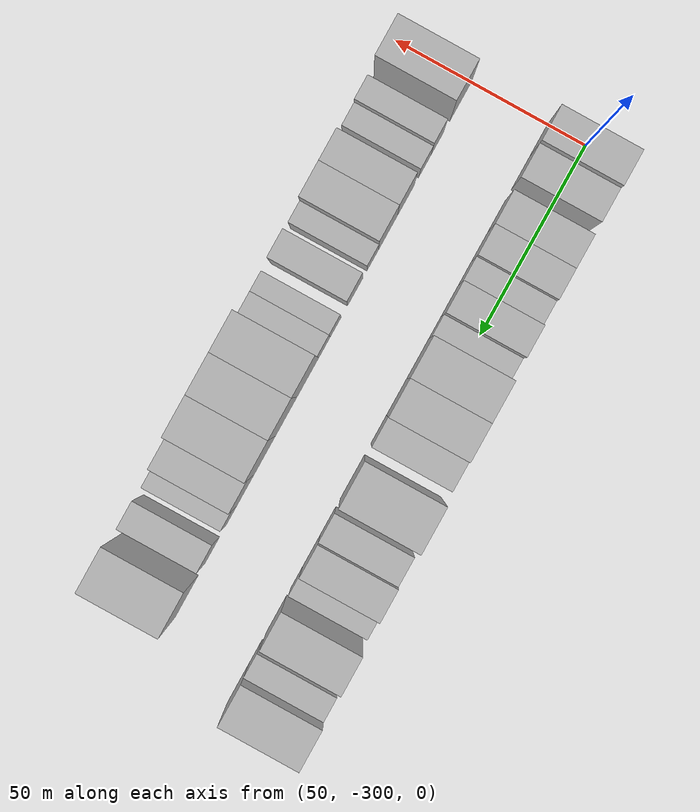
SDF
<sdf version="1.6">
 <world name="default">
  <model name="building_1">
   <static>1</static>
   <pose>50.0000 -295.6084 0 0.000000 0.000000 0.000000</pose>
   <link name="link">
    <pose>0 0 10.50 0 0 0</pose>
    <collision name="collision"><geometry><box><size>20.0000 8.7832 21.0000</size></box></geometry></collision>
    <visual name="visual">
     <cast_shadows>0</cast_shadows>
     <geometry><box><size>20.0000 8.7832 21.0000</size></box></geometry>
     <material>
      <script>
       <uri>model://HANNAS_wall/materials/scripts</uri>
       <uri>model://HANNAS_wall/materials/textures</uri>
       <name>vrc/HANNAS_wall</name>
      </script>
     </material>
    </visual>
   </link>
  </model>
  <model name="building_2">
   <static>1</static>
   <pose>50.0000 -287.0106 0 0.000000 0.000000 0.000000</pose>
   <link name="link">
    <pose>0 0 9.00 0 0 0</pose>
    <collision name="collision"><geometry><box><size>20.0000 8.4124 18.0000</size></box></geometry></collision>
    <visual name="visual">
     <cast_shadows>0</cast_shadows>
     <geometry><box><size>20.0000 8.4124 18.0000</size></box></geometry>
     <material>
      <script>
       <uri>model://HANNAS_wall/materials/scripts</uri>
       <uri>model://HANNAS_wall/materials/textures</uri>
       <name>vrc/HANNAS_wall</name>
      </script>
     </material>
    </visual>
   </link>
  </model>
  <model name="building_3">
   <static>1</static>
   <pose>50.0000 -275.5951 0 0.000000 0.000000 0.000000</pose>
   <link name="link">
    <pose>0 0 9.00 0 0 0</pose>
    <collision name="collision"><geometry><box><size>20.0000 8.4186 18.0000</size></box></geometry></collision>
    <visual name="visual">
     <cast_shadows>0</cast_shadows>
     <geometry><box><size>20.0000 8.4186 18.0000</size></box></geometry>
     <material>
      <script>
       <uri>model://HANNAS_wall/materials/scripts</uri>
       <uri>model://HANNAS_wall/materials/textures</uri>
       <name>vrc/HANNAS_wall</name>
      </script>
     </material>
    </visual>
   </link>
  </model>
  <model name="building_4">
   <static>1</static>
   <pose>50.0000 -267.5192 0 0.000000 0.000000 0.000000</pose>
   <link name="link">
    <pose>0 0 9.00 0 0 0</pose>
    <collision name="collision"><geometry><box><size>20.0000 7.7331 18.0000</size></box></geometry></collision>
    <visual name="visual">
     <cast_shadows>0</cast_shadows>
     <geometry><box><size>20.0000 7.7331 18.0000</size></box></geometry>
     <material>
      <script>
       <uri>model://HANNAS_wall/materials/scripts</uri>
       <uri>model://HANNAS_wall/materials/textures</uri>
       <name>vrc/HANNAS_wall</name>
      </script>
     </material>
    </visual>
   </link>
  </model>
  <model name="building_5">
   <static>1</static>
   <pose>50.0000 -260.5304 0 0.000000 0.000000 0.000000</pose>
   <link name="link">
    <pose>0 0 7.50 0 0 0</pose>
    <collision name="collision"><geometry><box><size>20.0000 6.2446 15.0000</size></box></geometry></collision>
    <visual name="visual">
     <cast_shadows>0</cast_shadows>
     <geometry><box><size>20.0000 6.2446 15.0000</size></box></geometry>
     <material>
      <script>
       <uri>model://HANNAS_wall/materials/scripts</uri>
       <uri>model://HANNAS_wall/materials/textures</uri>
       <name>vrc/HANNAS_wall</name>
      </script>
     </material>
    </visual>
   </link>
  </model>
  <model name="building_6">
   <static>1</static>
   <pose>50.0000 -253.3990 0 0.000000 0.000000 0.000000</pose>
   <link name="link">
    <pose>0 0 9.00 0 0 0</pose>
    <collision name="collision"><geometry><box><size>20.0000 8.0182 18.0000</size></box></geometry></collision>
    <visual name="visual">
     <cast_shadows>0</cast_shadows>
     <geometry><box><size>20.0000 8.0182 18.0000</size></box></geometry>
     <material>
      <script>
       <uri>model://HANNAS_wall/materials/scripts</uri>
       <uri>model://HANNAS_wall/materials/textures</uri>
       <name>vrc/HANNAS_wall</name>
      </script>
     </material>
    </visual>
   </link>
  </model>
  <model name="building_7">
   <static>1</static>
   <pose>50.0000 -246.5467 0 0.000000 0.000000 0.000000</pose>
   <link name="link">
    <pose>0 0 6.00 0 0 0</pose>
    <collision name="collision"><geometry><box><size>20.0000 5.6864 12.0000</size></box></geometry></collision>
    <visual name="visual">
     <cast_shadows>0</cast_shadows>
     <geometry><box><size>20.0000 5.6864 12.0000</size></box></geometry>
     <material>
      <script>
       <uri>model://HANNAS_wall/materials/scripts</uri>
       <uri>model://HANNAS_wall/materials/textures</uri>
       <name>vrc/HANNAS_wall</name>
      </script>
     </material>
    </visual>
   </link>
  </model>
  <model name="building_8">
   <static>1</static>
   <pose>50.0000 -238.4841 0 0.000000 0.000000 0.000000</pose>
   <link name="link">
    <pose>0 0 10.50 0 0 0</pose>
    <collision name="collision"><geometry><box><size>20.0000 10.4387 21.0000</size></box></geometry></collision>
    <visual name="visual">
     <cast_shadows>0</cast_shadows>
     <geometry><box><size>20.0000 10.4387 21.0000</size></box></geometry>
     <material>
      <script>
       <uri>model://HANNAS_wall/materials/scripts</uri>
       <uri>model://HANNAS_wall/materials/textures</uri>
       <name>vrc/HANNAS_wall</name>
      </script>
     </material>
    </visual>
   </link>
  </model>
  <model name="building_9">
   <static>1</static>
   <pose>50.0000 -228.4582 0 0.000000 0.000000 0.000000</pose>
   <link name="link">
    <pose>0 0 10.50 0 0 0</pose>
    <collision name="collision"><geometry><box><size>20.0000 9.6133 21.0000</size></box></geometry></collision>
    <visual name="visual">
     <cast_shadows>0</cast_shadows>
     <geometry><box><size>20.0000 9.6133 21.0000</size></box></geometry>
     <material>
      <script>
       <uri>model://HANNAS_wall/materials/scripts</uri>
       <uri>model://HANNAS_wall/materials/textures</uri>
       <name>vrc/HANNAS_wall</name>
      </script>
     </material>
    </visual>
   </link>
  </model>
  <model name="building_10">
   <static>1</static>
   <pose>50.0000 -219.9443 0 0.000000 0.000000 0.000000</pose>
   <link name="link">
    <pose>0 0 9.00 0 0 0</pose>
    <collision name="collision"><geometry><box><size>20.0000 7.4143 18.0000</size></box></geometry></collision>
    <visual name="visual">
     <cast_shadows>0</cast_shadows>
     <geometry><box><size>20.0000 7.4143 18.0000</size></box></geometry>
     <material>
      <script>
       <uri>model://HANNAS_wall/materials/scripts</uri>
       <uri>model://HANNAS_wall/materials/textures</uri>
       <name>vrc/HANNAS_wall</name>
      </script>
     </material>
    </visual>
   </link>
  </model>
  <model name="building_11">
   <static>1</static>
   <pose>50.0000 -207.4244 0 0.000000 0.000000 0.000000</pose>
   <link name="link">
    <pose>0 0 12.00 0 0 0</pose>
    <collision name="collision"><geometry><box><size>20.0000 11.6256 24.0000</size></box></geometry></collision>
    <visual name="visual">
     <cast_shadows>0</cast_shadows>
     <geometry><box><size>20.0000 11.6256 24.0000</size></box></geometry>
     <material>
      <script>
       <uri>model://HANNAS_wall/materials/scripts</uri>
       <uri>model://HANNAS_wall/materials/textures</uri>
       <name>vrc/HANNAS_wall</name>
      </script>
     </material>
    </visual>
   </link>
  </model>
  <model name="building_12">
   <static>1</static>
   <pose>50.0000 -195.9075 0 0.000000 0.000000 0.000000</pose>
   <link name="link">
    <pose>0 0 7.50 0 0 0</pose>
    <collision name="collision"><geometry><box><size>20.0000 7.4081 15.0000</size></box></geometry></collision>
    <visual name="visual">
     <cast_shadows>0</cast_shadows>
     <geometry><box><size>20.0000 7.4081 15.0000</size></box></geometry>
     <material>
      <script>
       <uri>model://HANNAS_wall/materials/scripts</uri>
       <uri>model://HANNAS_wall/materials/textures</uri>
       <name>vrc/HANNAS_wall</name>
      </script>
     </material>
    </visual>
   </link>
  </model>
  <model name="building_13">
   <static>1</static>
   <pose>50.0000 -188.0218 0 0.000000 0.000000 0.000000</pose>
   <link name="link">
    <pose>0 0 9.00 0 0 0</pose>
    <collision name="collision"><geometry><box><size>20.0000 8.3633 18.0000</size></box></geometry></collision>
    <visual name="visual">
     <cast_shadows>0</cast_shadows>
     <geometry><box><size>20.0000 8.3633 18.0000</size></box></geometry>
     <material>
      <script>
       <uri>model://HANNAS_wall/materials/scripts</uri>
       <uri>model://HANNAS_wall/materials/textures</uri>
       <name>vrc/HANNAS_wall</name>
      </script>
     </material>
    </visual>
   </link>
  </model>
  <model name="building_14">
   <static>1</static>
   <pose>50.0000 -181.0776 0 0.000000 0.000000 0.000000</pose>
   <link name="link">
    <pose>0 0 6.00 0 0 0</pose>
    <collision name="collision"><geometry><box><size>20.0000 5.5251 12.0000</size></box></geometry></collision>
    <visual name="visual">
     <cast_shadows>0</cast_shadows>
     <geometry><box><size>20.0000 5.5251 12.0000</size></box></geometry>
     <material>
      <script>
       <uri>model://HANNAS_wall/materials/scripts</uri>
       <uri>model://HANNAS_wall/materials/textures</uri>
       <name>vrc/HANNAS_wall</name>
      </script>
     </material>
    </visual>
   </link>
  </model>
  <model name="building_15">
   <static>1</static>
   <pose>50.0000 -171.4688 0 0.000000 0.000000 0.000000</pose>
   <link name="link">
    <pose>0 0 10.50 0 0 0</pose>
    <collision name="collision"><geometry><box><size>20.0000 9.6924 21.0000</size></box></geometry></collision>
    <visual name="visual">
     <cast_shadows>0</cast_shadows>
     <geometry><box><size>20.0000 9.6924 21.0000</size></box></geometry>
     <material>
      <script>
       <uri>model://HANNAS_wall/materials/scripts</uri>
       <uri>model://HANNAS_wall/materials/textures</uri>
       <name>vrc/HANNAS_wall</name>
      </script>
     </material>
    </visual>
   </link>
  </model>
  <model name="building_16">
   <static>1</static>
   <pose>50.0000 -161.5749 0 0.000000 0.000000 0.000000</pose>
   <link name="link">
    <pose>0 0 7.50 0 0 0</pose>
    <collision name="collision"><geometry><box><size>20.0000 6.0954 15.0000</size></box></geometry></collision>
    <visual name="visual">
     <cast_shadows>0</cast_shadows>
     <geometry><box><size>20.0000 6.0954 15.0000</size></box></geometry>
     <material>
      <script>
       <uri>model://HANNAS_wall/materials/scripts</uri>
       <uri>model://HANNAS_wall/materials/textures</uri>
       <name>vrc/HANNAS_wall</name>
      </script>
     </material>
    </visual>
   </link>
  </model>
  <model name="building_17">
   <static>1</static>
   <pose>50.0000 -153.3585 0 0.000000 0.000000 0.000000</pose>
   <link name="link">
    <pose>0 0 10.50 0 0 0</pose>
    <collision name="collision"><geometry><box><size>20.0000 10.3374 21.0000</size></box></geometry></collision>
    <visual name="visual">
     <cast_shadows>0</cast_shadows>
     <geometry><box><size>20.0000 10.3374 21.0000</size></box></geometry>
     <material>
      <script>
       <uri>model://HANNAS_wall/materials/scripts</uri>
       <uri>model://HANNAS_wall/materials/textures</uri>
       <name>vrc/HANNAS_wall</name>
      </script>
     </material>
    </visual>
   </link>
  </model>
  <model name="building_69">
   <static>1</static>
   <pose>90.0000 -294.8831 0 0.000000 0.000000 0.000000</pose>
   <link name="link">
    <pose>0 0 10.50 0 0 0</pose>
    <collision name="collision"><geometry><box><size>20.0000 10.2337 21.0000</size></box></geometry></collision>
    <visual name="visual">
     <cast_shadows>0</cast_shadows>
     <geometry><box><size>20.0000 10.2337 21.0000</size></box></geometry>
     <material>
      <script>
       <uri>model://HANNAS_wall/materials/scripts</uri>
       <uri>model://HANNAS_wall/materials/textures</uri>
       <name>vrc/HANNAS_wall</name>
      </script>
     </material>
    </visual>
   </link>
  </model>
  <model name="building_70">
   <static>1</static>
   <pose>90.0000 -283.7280 0 0.000000 0.000000 0.000000</pose>
   <link name="link">
    <pose>0 0 7.50 0 0 0</pose>
    <collision name="collision"><geometry><box><size>20.0000 6.0766 15.0000</size></box></geometry></collision>
    <visual name="visual">
     <cast_shadows>0</cast_shadows>
     <geometry><box><size>20.0000 6.0766 15.0000</size></box></geometry>
     <material>
      <script>
       <uri>model://HANNAS_wall/materials/scripts</uri>
       <uri>model://HANNAS_wall/materials/textures</uri>
       <name>vrc/HANNAS_wall</name>
      </script>
     </material>
    </visual>
   </link>
  </model>
  <model name="building_71">
   <static>1</static>
   <pose>90.0000 -277.7828 0 0.000000 0.000000 0.000000</pose>
   <link name="link">
    <pose>0 0 6.00 0 0 0</pose>
    <collision name="collision"><geometry><box><size>20.0000 5.8138 12.0000</size></box></geometry></collision>
    <visual name="visual">
     <cast_shadows>0</cast_shadows>
     <geometry><box><size>20.0000 5.8138 12.0000</size></box></geometry>
     <material>
      <script>
       <uri>model://HANNAS_wall/materials/scripts</uri>
       <uri>model://HANNAS_wall/materials/textures</uri>
       <name>vrc/HANNAS_wall</name>
      </script>
     </material>
    </visual>
   </link>
  </model>
  <model name="building_72">
   <static>1</static>
   <pose>90.0000 -268.8610 0 0.000000 0.000000 0.000000</pose>
   <link name="link">
    <pose>0 0 9.00 0 0 0</pose>
    <collision name="collision"><geometry><box><size>20.0000 8.0298 18.0000</size></box></geometry></collision>
    <visual name="visual">
     <cast_shadows>0</cast_shadows>
     <geometry><box><size>20.0000 8.0298 18.0000</size></box></geometry>
     <material>
      <script>
       <uri>model://HANNAS_wall/materials/scripts</uri>
       <uri>model://HANNAS_wall/materials/textures</uri>
       <name>vrc/HANNAS_wall</name>
      </script>
     </material>
    </visual>
   </link>
  </model>
  <model name="building_73">
   <static>1</static>
   <pose>90.0000 -260.3591 0 0.000000 0.000000 0.000000</pose>
   <link name="link">
    <pose>0 0 9.00 0 0 0</pose>
    <collision name="collision"><geometry><box><size>20.0000 8.9741 18.0000</size></box></geometry></collision>
    <visual name="visual">
     <cast_shadows>0</cast_shadows>
     <geometry><box><size>20.0000 8.9741 18.0000</size></box></geometry>
     <material>
      <script>
       <uri>model://HANNAS_wall/materials/scripts</uri>
       <uri>model://HANNAS_wall/materials/textures</uri>
       <name>vrc/HANNAS_wall</name>
      </script>
     </material>
    </visual>
   </link>
  </model>
  <model name="building_74">
   <static>1</static>
   <pose>90.0000 -253.1556 0 0.000000 0.000000 0.000000</pose>
   <link name="link">
    <pose>0 0 6.00 0 0 0</pose>
    <collision name="collision"><geometry><box><size>20.0000 5.4329 12.0000</size></box></geometry></collision>
    <visual name="visual">
     <cast_shadows>0</cast_shadows>
     <geometry><box><size>20.0000 5.4329 12.0000</size></box></geometry>
     <material>
      <script>
       <uri>model://HANNAS_wall/materials/scripts</uri>
       <uri>model://HANNAS_wall/materials/textures</uri>
       <name>vrc/HANNAS_wall</name>
      </script>
     </material>
    </visual>
   </link>
  </model>
  <model name="building_75">
   <static>1</static>
   <pose>90.0000 -244.8351 0 0.000000 0.000000 0.000000</pose>
   <link name="link">
    <pose>0 0 7.50 0 0 0</pose>
    <collision name="collision"><geometry><box><size>20.0000 7.2080 15.0000</size></box></geometry></collision>
    <visual name="visual">
     <cast_shadows>0</cast_shadows>
     <geometry><box><size>20.0000 7.2080 15.0000</size></box></geometry>
     <material>
      <script>
       <uri>model://HANNAS_wall/materials/scripts</uri>
       <uri>model://HANNAS_wall/materials/textures</uri>
       <name>vrc/HANNAS_wall</name>
      </script>
     </material>
    </visual>
   </link>
  </model>
  <model name="building_76">
   <static>1</static>
   <pose>90.0000 -235.6593 0 0.000000 0.000000 0.000000</pose>
   <link name="link">
    <pose>0 0 6.00 0 0 0</pose>
    <collision name="collision"><geometry><box><size>20.0000 5.1436 12.0000</size></box></geometry></collision>
    <visual name="visual">
     <cast_shadows>0</cast_shadows>
     <geometry><box><size>20.0000 5.1436 12.0000</size></box></geometry>
     <material>
      <script>
       <uri>model://HANNAS_wall/materials/scripts</uri>
       <uri>model://HANNAS_wall/materials/textures</uri>
       <name>vrc/HANNAS_wall</name>
      </script>
     </material>
    </visual>
   </link>
  </model>
  <model name="building_77">
   <static>1</static>
   <pose>90.0000 -230.3656 0 0.000000 0.000000 0.000000</pose>
   <link name="link">
    <pose>0 0 6.00 0 0 0</pose>
    <collision name="collision"><geometry><box><size>20.0000 5.4438 12.0000</size></box></geometry></collision>
    <visual name="visual">
     <cast_shadows>0</cast_shadows>
     <geometry><box><size>20.0000 5.4438 12.0000</size></box></geometry>
     <material>
      <script>
       <uri>model://HANNAS_wall/materials/scripts</uri>
       <uri>model://HANNAS_wall/materials/textures</uri>
       <name>vrc/HANNAS_wall</name>
      </script>
     </material>
    </visual>
   </link>
  </model>
  <model name="building_78">
   <static>1</static>
   <pose>90.0000 -222.4977 0 0.000000 0.000000 0.000000</pose>
   <link name="link">
    <pose>0 0 12.00 0 0 0</pose>
    <collision name="collision"><geometry><box><size>20.0000 10.2920 24.0000</size></box></geometry></collision>
    <visual name="visual">
     <cast_shadows>0</cast_shadows>
     <geometry><box><size>20.0000 10.2920 24.0000</size></box></geometry>
     <material>
      <script>
       <uri>model://HANNAS_wall/materials/scripts</uri>
       <uri>model://HANNAS_wall/materials/textures</uri>
       <name>vrc/HANNAS_wall</name>
      </script>
     </material>
    </visual>
   </link>
  </model>
  <model name="building_79">
   <static>1</static>
   <pose>90.0000 -212.2177 0 0.000000 0.000000 0.000000</pose>
   <link name="link">
    <pose>0 0 12.00 0 0 0</pose>
    <collision name="collision"><geometry><box><size>20.0000 10.2680 24.0000</size></box></geometry></collision>
    <visual name="visual">
     <cast_shadows>0</cast_shadows>
     <geometry><box><size>20.0000 10.2680 24.0000</size></box></geometry>
     <material>
      <script>
       <uri>model://HANNAS_wall/materials/scripts</uri>
       <uri>model://HANNAS_wall/materials/textures</uri>
       <name>vrc/HANNAS_wall</name>
      </script>
     </material>
    </visual>
   </link>
  </model>
  <model name="building_80">
   <static>1</static>
   <pose>90.0000 -201.9517 0 0.000000 0.000000 0.000000</pose>
   <link name="link">
    <pose>0 0 12.00 0 0 0</pose>
    <collision name="collision"><geometry><box><size>20.0000 10.2640 24.0000</size></box></geometry></collision>
    <visual name="visual">
     <cast_shadows>0</cast_shadows>
     <geometry><box><size>20.0000 10.2640 24.0000</size></box></geometry>
     <material>
      <script>
       <uri>model://HANNAS_wall/materials/scripts</uri>
       <uri>model://HANNAS_wall/materials/textures</uri>
       <name>vrc/HANNAS_wall</name>
      </script>
     </material>
    </visual>
   </link>
  </model>
  <model name="building_81">
   <static>1</static>
   <pose>90.0000 -192.7112 0 0.000000 0.000000 0.000000</pose>
   <link name="link">
    <pose>0 0 9.00 0 0 0</pose>
    <collision name="collision"><geometry><box><size>20.0000 8.2171 18.0000</size></box></geometry></collision>
    <visual name="visual">
     <cast_shadows>0</cast_shadows>
     <geometry><box><size>20.0000 8.2171 18.0000</size></box></geometry>
     <material>
      <script>
       <uri>model://HANNAS_wall/materials/scripts</uri>
       <uri>model://HANNAS_wall/materials/textures</uri>
       <name>vrc/HANNAS_wall</name>
      </script>
     </material>
    </visual>
   </link>
  </model>
  <model name="building_82">
   <static>1</static>
   <pose>90.0000 -186.0684 0 0.000000 0.000000 0.000000</pose>
   <link name="link">
    <pose>0 0 6.00 0 0 0</pose>
    <collision name="collision"><geometry><box><size>20.0000 5.0684 12.0000</size></box></geometry></collision>
    <visual name="visual">
     <cast_shadows>0</cast_shadows>
     <geometry><box><size>20.0000 5.0684 12.0000</size></box></geometry>
     <material>
      <script>
       <uri>model://HANNAS_wall/materials/scripts</uri>
       <uri>model://HANNAS_wall/materials/textures</uri>
       <name>vrc/HANNAS_wall</name>
      </script>
     </material>
    </visual>
   </link>
  </model>
  <model name="building_83">
   <static>1</static>
   <pose>90.0000 -176.9957 0 0.000000 0.000000 0.000000</pose>
   <link name="link">
    <pose>0 0 7.50 0 0 0</pose>
    <collision name="collision"><geometry><box><size>20.0000 7.0769 15.0000</size></box></geometry></collision>
    <visual name="visual">
     <cast_shadows>0</cast_shadows>
     <geometry><box><size>20.0000 7.0769 15.0000</size></box></geometry>
     <material>
      <script>
       <uri>model://HANNAS_wall/materials/scripts</uri>
       <uri>model://HANNAS_wall/materials/textures</uri>
       <name>vrc/HANNAS_wall</name>
      </script>
     </material>
    </visual>
   </link>
  </model>
  <model name="building_84">
   <static>1</static>
   <pose>90.0000 -164.8664 0 0.000000 0.000000 0.000000</pose>
   <link name="link">
    <pose>0 0 12.00 0 0 0</pose>
    <collision name="collision"><geometry><box><size>20.0000 11.1818 24.0000</size></box></geometry></collision>
    <visual name="visual">
     <cast_shadows>0</cast_shadows>
     <geometry><box><size>20.0000 11.1818 24.0000</size></box></geometry>
     <material>
      <script>
       <uri>model://HANNAS_wall/materials/scripts</uri>
       <uri>model://HANNAS_wall/materials/textures</uri>
       <name>vrc/HANNAS_wall</name>
      </script>
     </material>
    </visual>
   </link>
  </model>
 </world>
</sdf>
